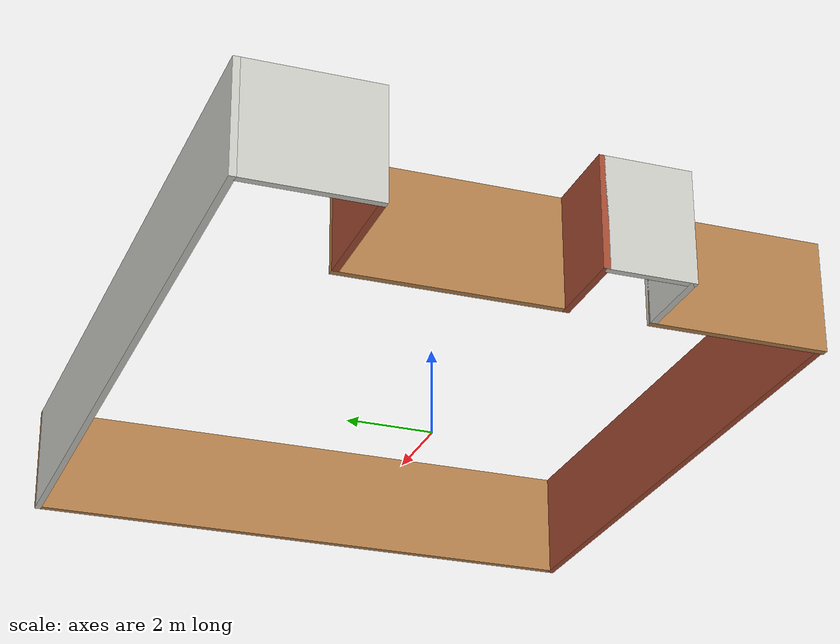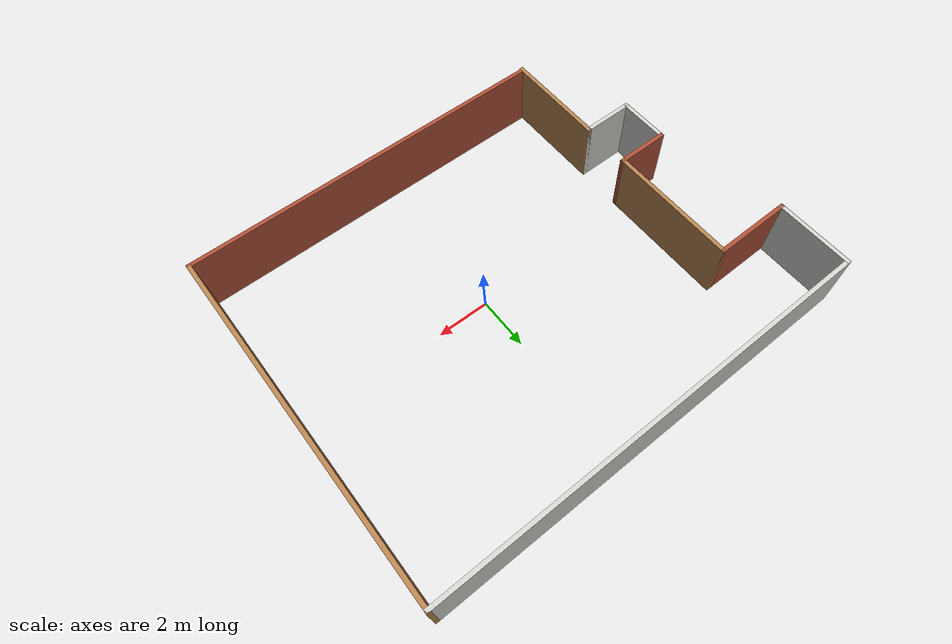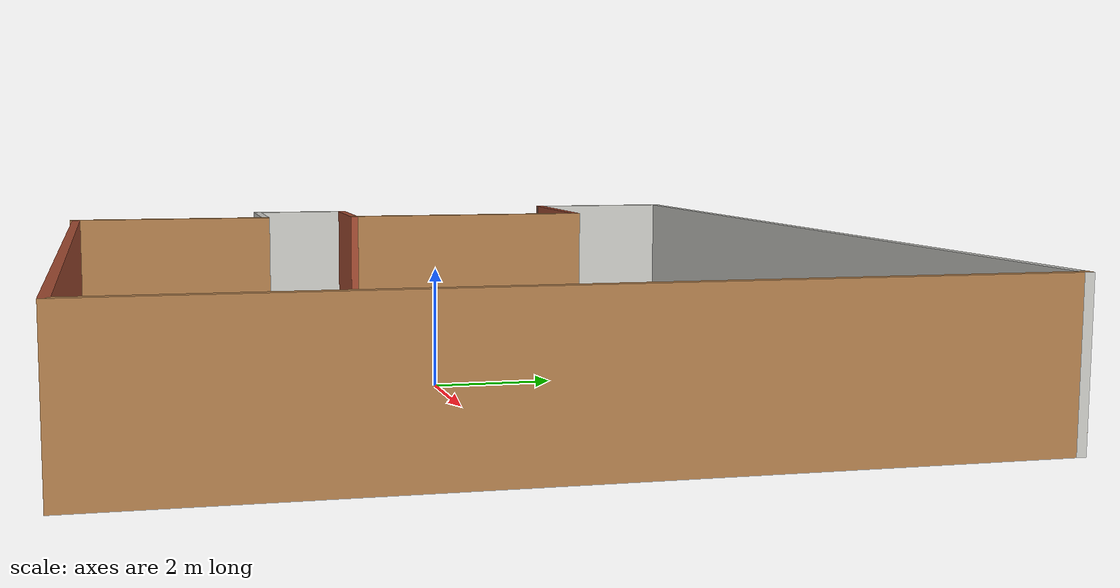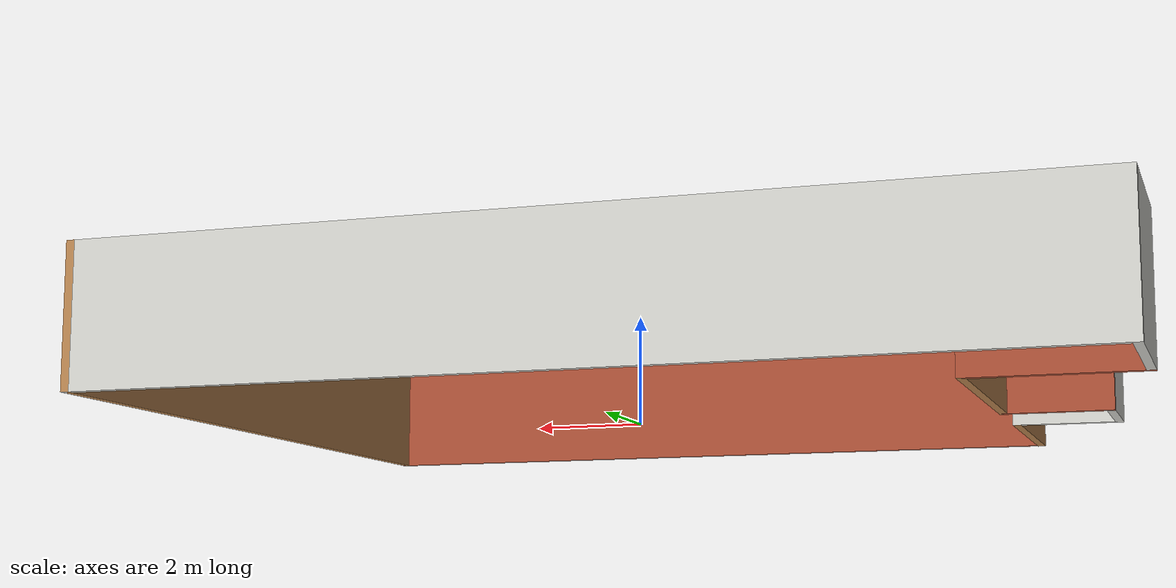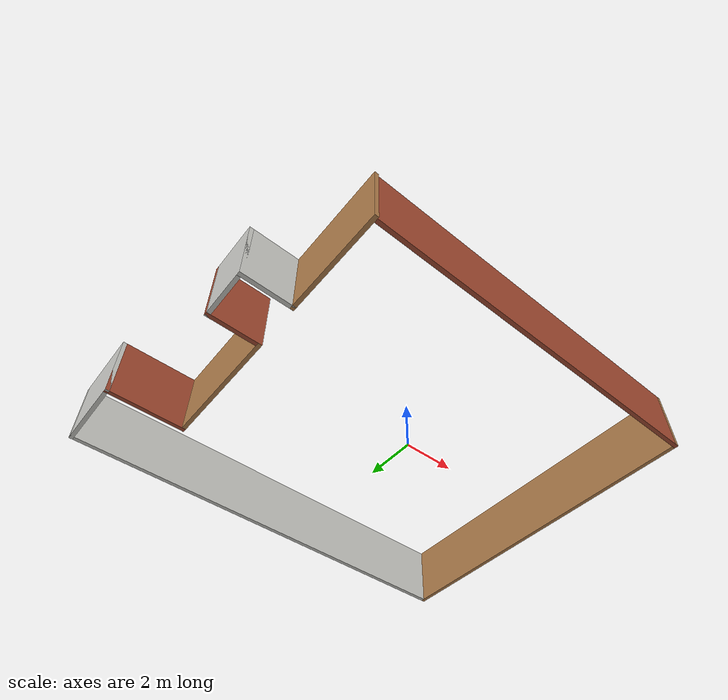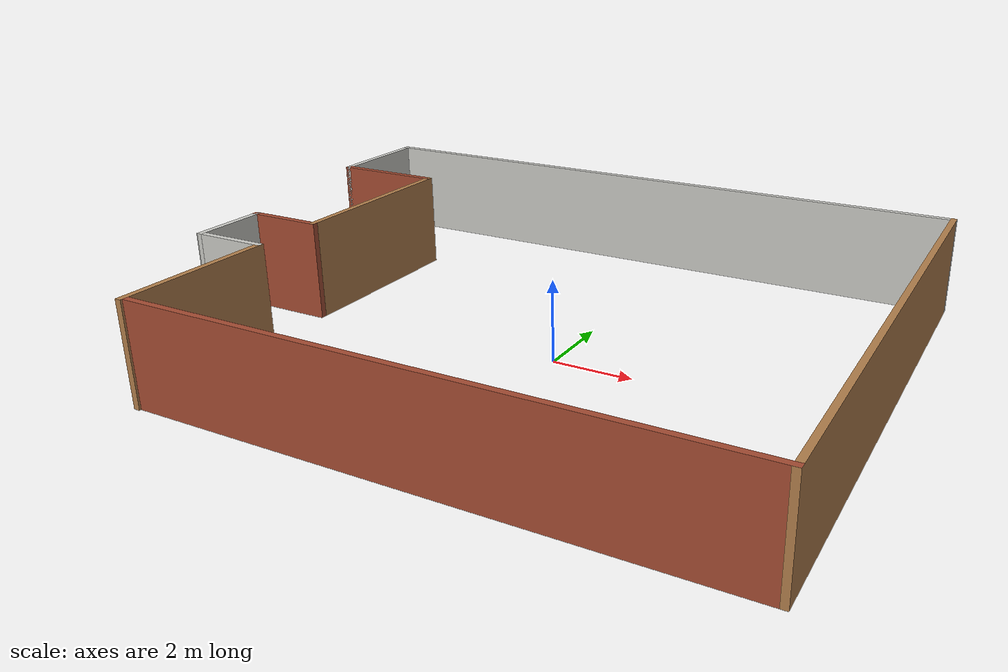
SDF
<?xml version='1.0'?>
<sdf version='1.7'>
  <model name='Untitled'>
    <pose>-1.005 0.610001 0 0 -0 0</pose>
    <link name='Wall_0'>
      <collision name='Wall_0_Collision'>
        <geometry>
          <box>
            <size>14 0.15 2.5</size>
          </box>
        </geometry>
        <pose>0 0 1.25 0 -0 0</pose>
      </collision>
      <visual name='Wall_0_Visual'>
        <pose>0 0 1.25 0 -0 0</pose>
        <geometry>
          <box>
            <size>14 0.15 2.5</size>
          </box>
        </geometry>
        <material>
          <script>
            <uri>file://media/materials/scripts/gazebo.material</uri>
            <name>Gazebo/Bricks</name>
          </script>
          <ambient>1 1 1 1</ambient>
        </material>
        <meta>
          <layer>0</layer>
        </meta>
      </visual>
      <pose>1.5 -6.65 0 0 -0 0</pose>
    </link>
    <link name='Wall_1'>
      <collision name='Wall_1_Collision'>
        <geometry>
          <box>
            <size>13.5 0.15 2.5</size>
          </box>
        </geometry>
        <pose>0 0 1.25 0 -0 0</pose>
      </collision>
      <visual name='Wall_1_Visual'>
        <pose>0 0 1.25 0 -0 0</pose>
        <geometry>
          <box>
            <size>13.5 0.15 2.5</size>
          </box>
        </geometry>
        <material>
          <script>
            <uri>file://media/materials/scripts/gazebo.material</uri>
            <name>Gazebo/Wood</name>
          </script>
          <ambient>1 1 1 1</ambient>
        </material>
        <meta>
          <layer>0</layer>
        </meta>
      </visual>
      <pose>8.425 0.024999 0 0 -0 1.5708</pose>
    </link>
    <link name='Wall_15'>
      <collision name='Wall_15_Collision'>
        <geometry>
          <box>
            <size>4 0.15 2.5</size>
          </box>
        </geometry>
        <pose>0 0 1.25 0 -0 0</pose>
      </collision>
      <visual name='Wall_15_Visual'>
        <pose>0 0 1.25 0 -0 0</pose>
        <geometry>
          <box>
            <size>4 0.15 2.5</size>
          </box>
        </geometry>
        <material>
          <script>
            <uri>file://media/materials/scripts/gazebo.material</uri>
            <name>Gazebo/Wood</name>
          </script>
          <ambient>1 1 1 1</ambient>
        </material>
        <meta>
          <layer>0</layer>
        </meta>
      </visual>
      <pose>-5.575 -4.775 0 0 -0 -1.5708</pose>
    </link>
    <link name='Wall_2'>
      <collision name='Wall_2_Collision'>
        <geometry>
          <box>
            <size>17 0.15 2.5</size>
          </box>
        </geometry>
        <pose>0 0 1.25 0 -0 0</pose>
      </collision>
      <visual name='Wall_2_Visual'>
        <pose>0 0 1.25 0 -0 0</pose>
        <geometry>
          <box>
            <size>17 0.15 2.5</size>
          </box>
        </geometry>
        <material>
          <script>
            <uri>file://media/materials/scripts/gazebo.material</uri>
            <name>Gazebo/CeilingTiled</name>
          </script>
          <ambient>0.435294 0.796078 0.67451 1</ambient>
        </material>
        <meta>
          <layer>0</layer>
        </meta>
      </visual>
      <pose>-0 6.7 0 0 -0 3.14159</pose>
    </link>
    <link name='Wall_3'>
      <collision name='Wall_3_Collision'>
        <geometry>
          <box>
            <size>3 0.15 2.5</size>
          </box>
        </geometry>
        <pose>0 0 1.25 0 -0 0</pose>
      </collision>
      <visual name='Wall_3_Visual'>
        <pose>0 0 1.25 0 -0 0</pose>
        <geometry>
          <box>
            <size>3 0.15 2.5</size>
          </box>
        </geometry>
        <material>
          <script>
            <uri>file://media/materials/scripts/gazebo.material</uri>
            <name>Gazebo/CeilingTiled</name>
          </script>
          <ambient>1 1 1 1</ambient>
        </material>
        <meta>
          <layer>0</layer>
        </meta>
      </visual>
      <pose>-8.425 5.275 0 0 -0 -1.5708</pose>
    </link>
    <link name='Wall_4'>
      <collision name='Wall_4_Collision'>
        <geometry>
          <box>
            <size>3 0.15 2.5</size>
          </box>
        </geometry>
        <pose>0 0 1.25 0 -0 0</pose>
      </collision>
      <visual name='Wall_4_Visual'>
        <pose>0 0 1.25 0 -0 0</pose>
        <geometry>
          <box>
            <size>3 0.15 2.5</size>
          </box>
        </geometry>
        <material>
          <script>
            <uri>file://media/materials/scripts/gazebo.material</uri>
            <name>Gazebo/Bricks</name>
          </script>
          <ambient>1 1 1 1</ambient>
        </material>
        <meta>
          <layer>0</layer>
        </meta>
      </visual>
      <pose>-7 3.85 0 0 -0 0</pose>
    </link>
    <link name='Wall_5'>
      <collision name='Wall_5_Collision'>
        <geometry>
          <box>
            <size>5 0.15 2.5</size>
          </box>
        </geometry>
        <pose>0 0 1.25 0 -0 0</pose>
      </collision>
      <visual name='Wall_5_Visual'>
        <pose>0 0 1.25 0 -0 0</pose>
        <geometry>
          <box>
            <size>5 0.15 2.5</size>
          </box>
        </geometry>
        <material>
          <script>
            <uri>file://media/materials/scripts/gazebo.material</uri>
            <name>Gazebo/Wood</name>
          </script>
          <ambient>1 1 1 1</ambient>
        </material>
        <meta>
          <layer>0</layer>
        </meta>
      </visual>
      <pose>-5.575 1.425 0 0 -0 -1.5708</pose>
    </link>
    <link name='Wall_6'>
      <collision name='Wall_6_Collision'>
        <geometry>
          <box>
            <size>2 0.15 2.5</size>
          </box>
        </geometry>
        <pose>0 0 1.25 0 -0 0</pose>
      </collision>
      <visual name='Wall_6_Visual'>
        <pose>0 0 1.25 0 -0 0</pose>
        <geometry>
          <box>
            <size>2 0.15 2.5</size>
          </box>
        </geometry>
        <material>
          <script>
            <uri>file://media/materials/scripts/gazebo.material</uri>
            <name>Gazebo/Bricks</name>
          </script>
          <ambient>1 1 1 1</ambient>
        </material>
        <meta>
          <layer>0</layer>
        </meta>
      </visual>
      <pose>-6.5 -1 0 0 -0 3.14159</pose>
    </link>
    <link name='Wall_7'>
      <collision name='Wall_7_Collision'>
        <geometry>
          <box>
            <size>2 0.15 2.5</size>
          </box>
        </geometry>
        <pose>0 0 1.25 0 -0 0</pose>
      </collision>
      <visual name='Wall_7_Visual'>
        <pose>0 0 1.25 0 -0 0</pose>
        <geometry>
          <box>
            <size>2 0.15 2.5</size>
          </box>
        </geometry>
        <material>
          <script>
            <uri>file://media/materials/scripts/gazebo.material</uri>
            <name>Gazebo/CeilingTiled</name>
          </script>
          <ambient>1 1 1 1</ambient>
        </material>
        <meta>
          <layer>0</layer>
        </meta>
      </visual>
      <pose>-7.425 -1.925 0 0 -0 -1.5708</pose>
    </link>
    <link name='Wall_8'>
      <collision name='Wall_8_Collision'>
        <geometry>
          <box>
            <size>2 0.15 2.5</size>
          </box>
        </geometry>
        <pose>0 0 1.25 0 -0 0</pose>
      </collision>
      <visual name='Wall_8_Visual'>
        <pose>0 0 1.25 0 -0 0</pose>
        <geometry>
          <box>
            <size>2 0.15 2.5</size>
          </box>
        </geometry>
        <material>
          <script>
            <uri>file://media/materials/scripts/gazebo.material</uri>
            <name>Gazebo/CeilingTiled</name>
          </script>
          <ambient>1 1 1 1</ambient>
        </material>
        <meta>
          <layer>0</layer>
        </meta>
      </visual>
      <pose>-6.5 -2.85 0 0 -0 0</pose>
    </link>
    <static>1</static>
  </model>
</sdf>
